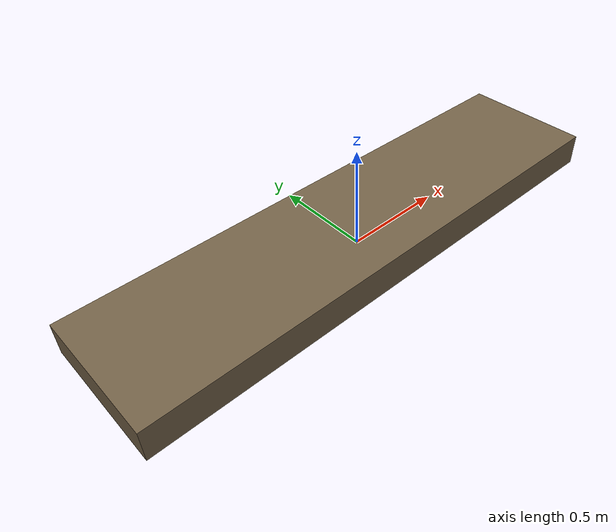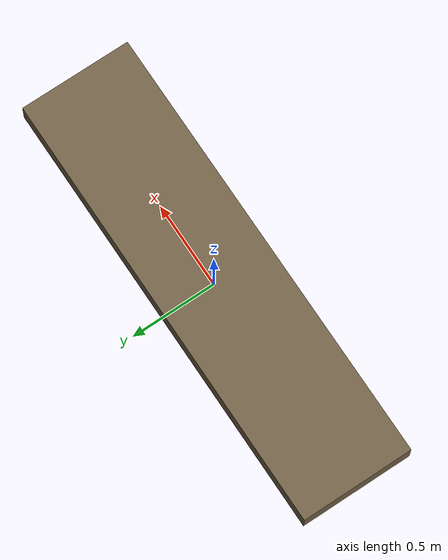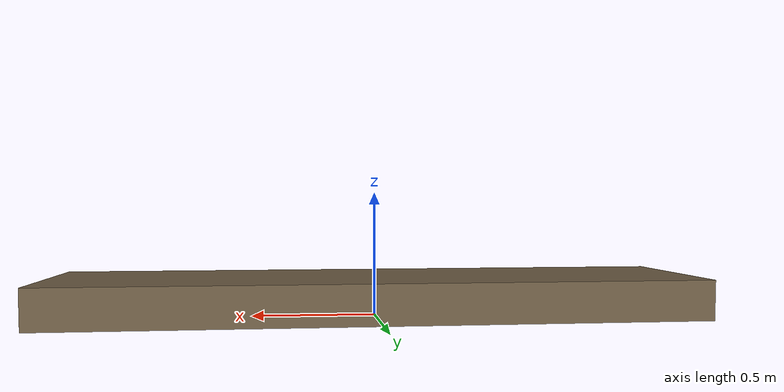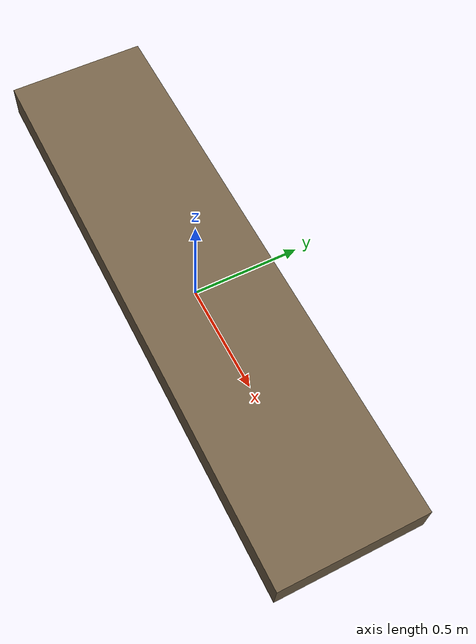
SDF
<?xml version="1.0"?>
<sdf version="1.9">
  <model name="kki_dock">
    <static>true</static>
    <link name="base_link">
      <visual name="dock_visual">
        <pose>0 0 0.08 0 0 0</pose>
        <geometry>
          <box>
            <size>2.6 0.65 0.16</size>
          </box>
        </geometry>
        <material>
          <ambient>0.45 0.38 0.28 1</ambient>
          <diffuse>0.45 0.38 0.28 1</diffuse>
        </material>
      </visual>
      <collision name="collision">
        <!-- Dock body is solid for first-contact docking scoring. -->
        <pose>0 0 0.08 0 0 0</pose>
        <geometry>
          <box>
            <size>2.6 0.65 0.16</size>
          </box>
        </geometry>
      </collision>
      <sensor name="object_contact_sensor" type="contact">
        <!-- Dock contacts are published for docking detection and scoring checks. -->
        <contact>
          <collision>collision</collision>
          <topic>/kki/collisions/objects</topic>
        </contact>
        <always_on>true</always_on>
        <update_rate>30</update_rate>
      </sensor>
    </link>
  </model>
</sdf>
